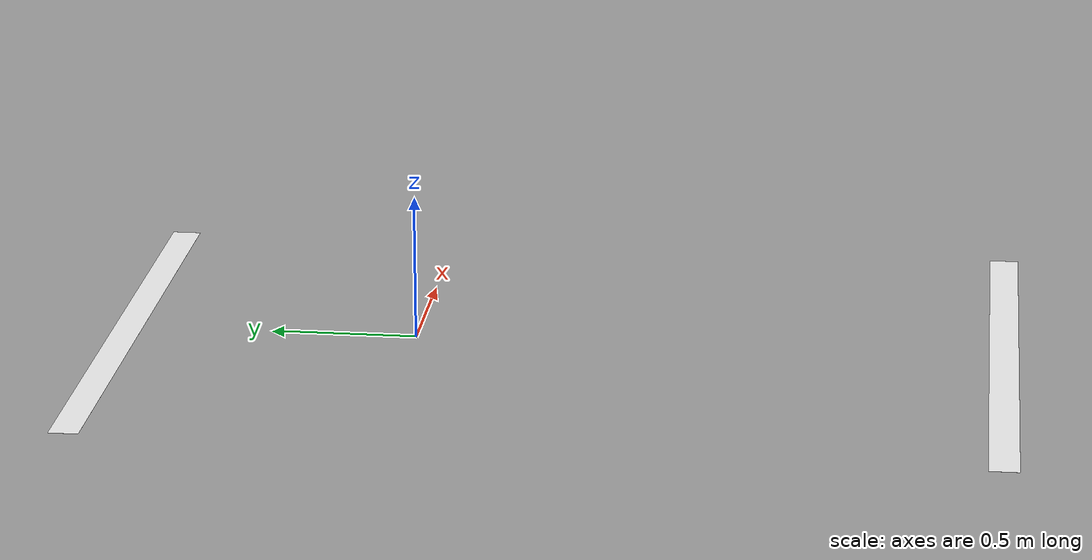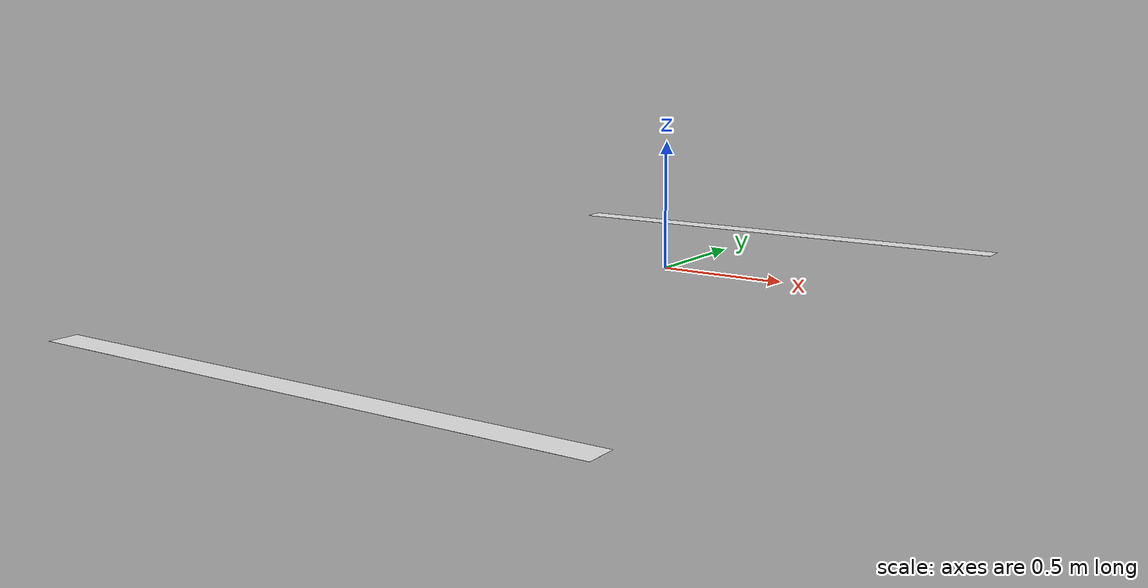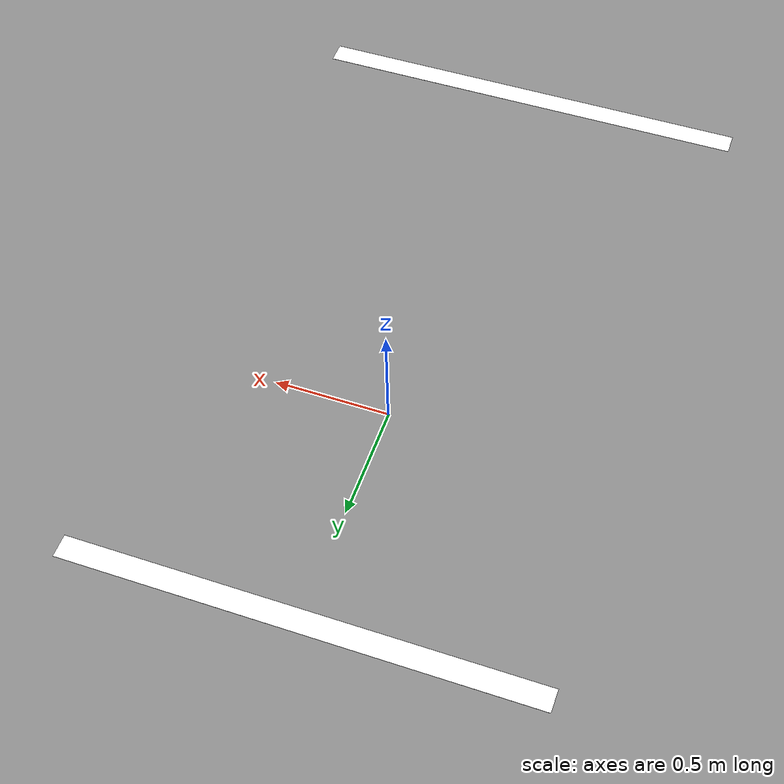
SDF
<?xml version="1.0"?>
<sdf version="1.4">
  <model name="Lane Straight Pair 2m">
    <static>true</static>
    <link name="link">
      <collision name="collision">
        <pose>0 0 -0.002 0 0 0</pose>
        <geometry>
          <box>
            <size>0.5 0.5 0.001</size>
          </box>
        </geometry>
      </collision>
      <visual name="lane_0">
        <pose>0 1 0.001 0 0 0</pose>
        <cast_shadows>false</cast_shadows>
        <geometry>
          <plane>
            <normal>0 0 1</normal>
            <size>2 0.10</size>
          </plane>
        </geometry>
        <material>
          <ambient>1 1 1 1</ambient>
          <diffuse>1 1 1 1</diffuse>
          <specular>0.5 0.5 0.5 1</specular>
        </material>
      </visual>
      <visual name="lane_1">
        <pose>0 -2 0.001 0 0 0</pose>
        <cast_shadows>false</cast_shadows>
        <geometry>
          <plane>
            <normal>0 0 1</normal>
            <size>2 0.10</size>
          </plane>
        </geometry>
        <material>
          <ambient>1 1 1 1</ambient>
          <diffuse>1 1 1 1</diffuse>
          <specular>0.5 0.5 0.5 1</specular>
        </material>
      </visual>
    </link>
  </model>
</sdf>
